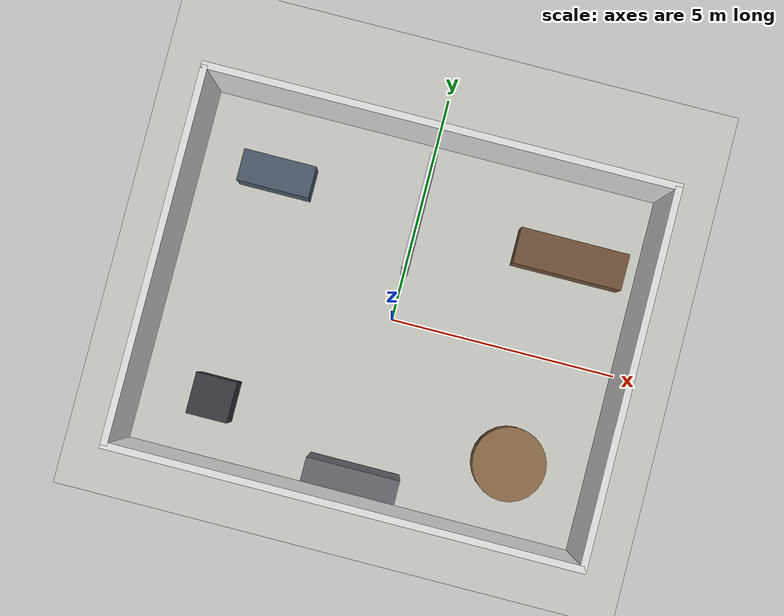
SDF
<?xml version="1.0" ?>
<!-- Gazebo Harmonic world description for the simulated lab environment. -->
<sdf version="1.10">
  <world name="lab">

    <physics name="1ms" type="ignored">
      <max_step_size>0.001</max_step_size>
      <real_time_factor>1.0</real_time_factor>
    </physics>

    <plugin filename="gz-sim-physics-system" name="gz::sim::systems::Physics"/>
    <plugin filename="gz-sim-user-commands-system" name="gz::sim::systems::UserCommands"/>
    <plugin filename="gz-sim-scene-broadcaster-system" name="gz::sim::systems::SceneBroadcaster"/>
    <plugin filename="gz-sim-contact-system" name="gz::sim::systems::Contact"/>
    <plugin filename="gz-sim-imu-system" name="gz::sim::systems::Imu"/>
    <plugin filename="gz-sim-sensors-system" name="gz::sim::systems::Sensors">
      <render_engine>ogre2</render_engine>
    </plugin>

    <scene>
      <ambient>0.6 0.6 0.6 1</ambient>
      <background>0.8 0.85 0.9 1</background>
      <shadows>true</shadows>
    </scene>

    <light type="directional" name="sun">
      <cast_shadows>true</cast_shadows>
      <pose>0 0 10 0 0 0</pose>
      <diffuse>0.9 0.9 0.9 1</diffuse>
      <specular>0.2 0.2 0.2 1</specular>
      <direction>-0.4 0.2 -0.9</direction>
    </light>

    <model name="ground_plane">
      <static>true</static>
      <link name="link">
        <collision name="collision">
          <geometry>
            <plane>
              <normal>0 0 1</normal>
              <size>100 100</size>
            </plane>
          </geometry>
        </collision>
        <visual name="visual">
          <geometry>
            <plane>
              <normal>0 0 1</normal>
              <size>100 100</size>
            </plane>
          </geometry>
          <material>
            <ambient>0.75 0.75 0.72 1</ambient>
            <diffuse>0.8 0.8 0.77 1</diffuse>
          </material>
        </visual>
      </link>
    </model>

    <!-- Lab room: 10 m x 8 m interior, walls 2.5 m tall. -->
    <model name="lab_walls">
      <static>true</static>

      <link name="wall_north">
        <pose>0 4 1.25 0 0 0</pose>
        <collision name="collision">
          <geometry><box><size>10.15 0.15 2.5</size></box></geometry>
        </collision>
        <visual name="visual">
          <geometry><box><size>10.15 0.15 2.5</size></box></geometry>
          <material>
            <ambient>0.85 0.85 0.85 1</ambient>
            <diffuse>0.9 0.9 0.9 1</diffuse>
          </material>
        </visual>
      </link>

      <link name="wall_south">
        <pose>0 -4 1.25 0 0 0</pose>
        <collision name="collision">
          <geometry><box><size>10.15 0.15 2.5</size></box></geometry>
        </collision>
        <visual name="visual">
          <geometry><box><size>10.15 0.15 2.5</size></box></geometry>
          <material>
            <ambient>0.85 0.85 0.85 1</ambient>
            <diffuse>0.9 0.9 0.9 1</diffuse>
          </material>
        </visual>
      </link>

      <link name="wall_east">
        <pose>5 0 1.25 0 0 0</pose>
        <collision name="collision">
          <geometry><box><size>0.15 8 2.5</size></box></geometry>
        </collision>
        <visual name="visual">
          <geometry><box><size>0.15 8 2.5</size></box></geometry>
          <material>
            <ambient>0.85 0.85 0.85 1</ambient>
            <diffuse>0.9 0.9 0.9 1</diffuse>
          </material>
        </visual>
      </link>

      <link name="wall_west">
        <pose>-5 0 1.25 0 0 0</pose>
        <collision name="collision">
          <geometry><box><size>0.15 8 2.5</size></box></geometry>
        </collision>
        <visual name="visual">
          <geometry><box><size>0.15 8 2.5</size></box></geometry>
          <material>
            <ambient>0.85 0.85 0.85 1</ambient>
            <diffuse>0.9 0.9 0.9 1</diffuse>
          </material>
        </visual>
      </link>

      <!-- Partial divider that gives the mapper some interior structure to close loops on. -->
      <link name="divider">
        <pose>0 2.2 1.25 0 0 0</pose>
        <collision name="collision">
          <geometry><box><size>0.15 2.4 2.5</size></box></geometry>
        </collision>
        <visual name="visual">
          <geometry><box><size>0.15 2.4 2.5</size></box></geometry>
          <material>
            <ambient>0.8 0.8 0.82 1</ambient>
            <diffuse>0.85 0.85 0.88 1</diffuse>
          </material>
        </visual>
      </link>
    </model>

    <!-- Furniture marking each named station in config/stations.yaml. -->
    <model name="workbench">
      <static>true</static>
      <pose>3.4 2.2 0.4 0 0 0</pose>
      <link name="link">
        <collision name="collision">
          <geometry><box><size>2.4 0.8 0.8</size></box></geometry>
        </collision>
        <visual name="visual">
          <geometry><box><size>2.4 0.8 0.8</size></box></geometry>
          <material>
            <ambient>0.35 0.25 0.18 1</ambient>
            <diffuse>0.45 0.32 0.22 1</diffuse>
          </material>
        </visual>
      </link>
    </model>

    <model name="microscope_bench">
      <static>true</static>
      <pose>-3.2 2.4 0.4 0 0 0</pose>
      <link name="link">
        <collision name="collision">
          <geometry><box><size>1.6 0.7 0.8</size></box></geometry>
        </collision>
        <visual name="visual">
          <geometry><box><size>1.6 0.7 0.8</size></box></geometry>
          <material>
            <ambient>0.2 0.25 0.3 1</ambient>
            <diffuse>0.3 0.35 0.42 1</diffuse>
          </material>
        </visual>
      </link>
    </model>

    <model name="printer_3d">
      <static>true</static>
      <pose>-3.3 -2.6 0.5 0 0 0</pose>
      <link name="link">
        <collision name="collision">
          <geometry><box><size>0.9 0.9 1.0</size></box></geometry>
        </collision>
        <visual name="visual">
          <geometry><box><size>0.9 0.9 1.0</size></box></geometry>
          <material>
            <ambient>0.15 0.15 0.17 1</ambient>
            <diffuse>0.22 0.22 0.25 1</diffuse>
          </material>
        </visual>
      </link>
    </model>

    <model name="meeting_table">
      <static>true</static>
      <pose>3.2 -2.4 0.37 0 0 0</pose>
      <link name="link">
        <collision name="collision">
          <geometry><cylinder><radius>0.8</radius><length>0.75</length></cylinder></geometry>
        </collision>
        <visual name="visual">
          <geometry><cylinder><radius>0.8</radius><length>0.75</length></cylinder></geometry>
          <material>
            <ambient>0.4 0.3 0.2 1</ambient>
            <diffuse>0.55 0.42 0.28 1</diffuse>
          </material>
        </visual>
      </link>
    </model>

    <model name="storage_shelf">
      <static>true</static>
      <pose>0 -3.5 0.9 0 0 0</pose>
      <link name="link">
        <collision name="collision">
          <geometry><box><size>2.0 0.5 1.8</size></box></geometry>
        </collision>
        <visual name="visual">
          <geometry><box><size>2.0 0.5 1.8</size></box></geometry>
          <material>
            <ambient>0.3 0.3 0.32 1</ambient>
            <diffuse>0.4 0.4 0.43 1</diffuse>
          </material>
        </visual>
      </link>
    </model>

  </world>
</sdf>
